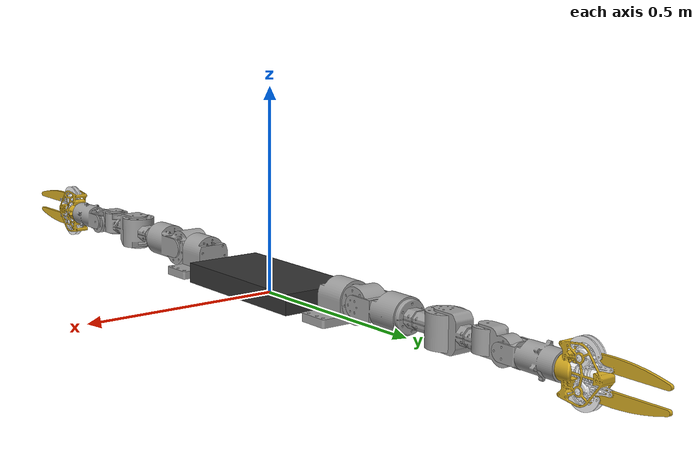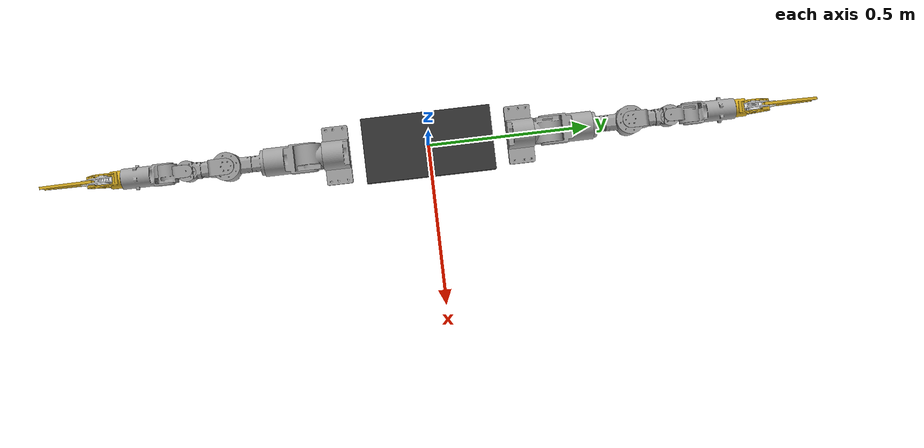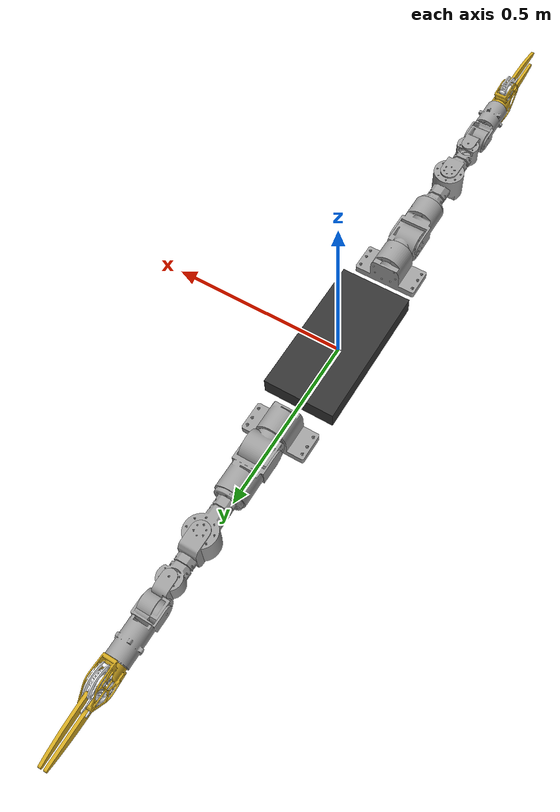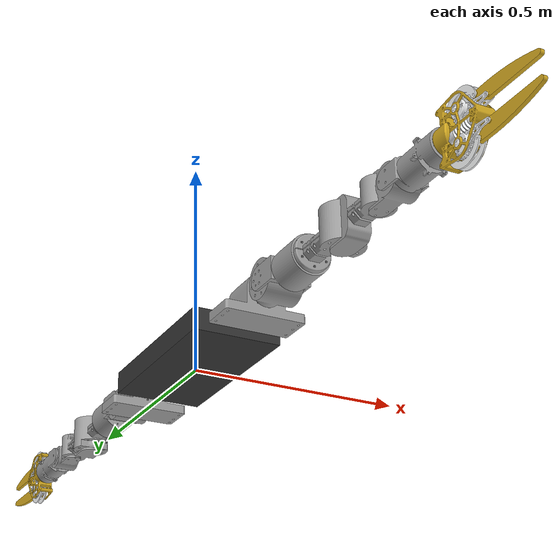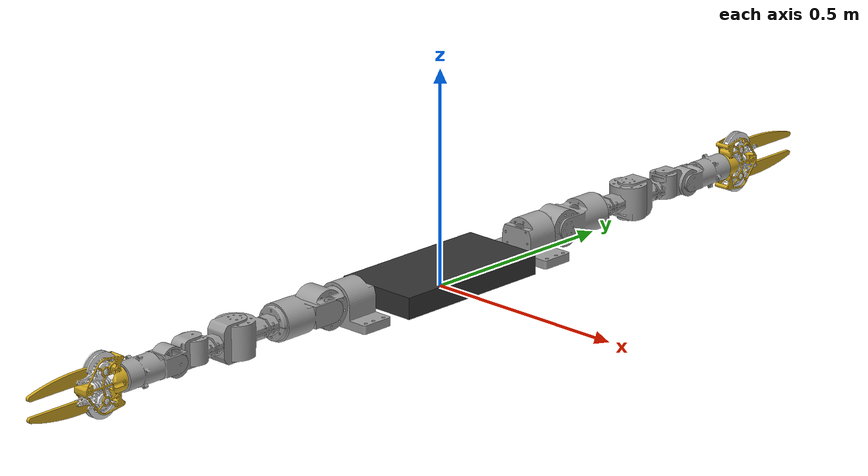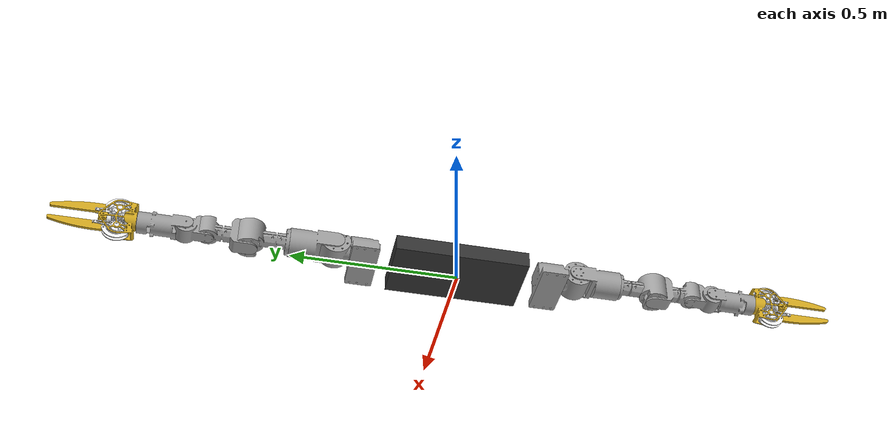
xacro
<?xml version="1.0" ?>
<robot xmlns:xacro="http://www.ros.org/wiki/xacro" name="dual_walkie_arm">

    <xacro:arg name="robot_name" default="dual_walkie_arm" />
    <xacro:arg name="base_link" default="base_link" />
    <xacro:arg name="use_gripper" default="true" />
    <xacro:arg name="arm_spacing" default="0.5" />

    <xacro:include filename="$(find arm_description)/urdf/walkie-arm/walkie_arm.urdf.xacro" />
    <xacro:include filename="$(find arm_description)/urdf/walkie-gripper/walkie_gripper.urdf.xacro" />

    <link name="$(arg base_link)">
      <inertial>
        <origin xyz="0 0 0.025" rpy="0 0 0" />
        <mass value="2.0" />
        <inertia ixx="0.01" ixy="0.0" ixz="0.0" iyy="0.01" iyz="0.0" izz="0.015" />
      </inertial>
      <visual>
        <geometry>
          <box size="0.2 0.4 0.05" />
        </geometry>
        <origin xyz="0 0 0.025" rpy="0 0 0" />
        <material name="base_material">
          <color rgba="0.2 0.2 0.2 1.0" />
        </material>
      </visual>
      <collision>
        <geometry>
          <box size="0.2 0.4 0.05" />
        </geometry>
        <origin xyz="0 0 0.025" rpy="0 0 0" />
      </collision>
    </link>

    <joint name="left_arm_mount_joint" type="fixed">
      <parent link="$(arg base_link)" />
      <child link="left_arm_base" />
      <origin xyz="0 ${$(arg arm_spacing)/2} 0.05" rpy="0 0 1.570796326794897" />
    </joint>

    <xacro:walkie_arm base_link="left_arm_base" prefix="left" />

    <xacro:if value="$(arg use_gripper)">
      <xacro:walkie_gripper parent="left_link6" prefix="left" />
    </xacro:if>

    <joint name="right_arm_mount_joint" type="fixed">
      <parent link="$(arg base_link)" />
      <child link="right_arm_base" />
      <origin xyz="0 ${-$(arg arm_spacing)/2} 0.05" rpy="0 0 -1.570796326794897" />
    </joint>

    <xacro:walkie_arm base_link="right_arm_base" prefix="right" />

    <xacro:if value="$(arg use_gripper)">
      <xacro:walkie_gripper parent="right_link6" prefix="right" />
    </xacro:if>

    <gazebo reference="$(arg base_link)">
      <material>Gazebo/DarkGrey</material>
    </gazebo>

    <gazebo reference="left_arm_base">
      <material>Gazebo/Grey</material>
    </gazebo>

    <gazebo reference="right_arm_base">
      <material>Gazebo/Grey</material>
    </gazebo>

</robot>

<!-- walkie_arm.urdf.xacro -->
<robot xmlns:xacro="http://www.ros.org/wiki/xacro">

  <xacro:property name="joint_effort" value="30.0" />
  <xacro:property name="joint_velocity" value="2.0" />
  <xacro:property name="joint_damping" value="0.1" />
  <xacro:property name="joint_friction" value="0.1" />

  <material name="walkie_steel_satin">
    <color rgba="0.62353 0.62353 0.62353 1.0" />
  </material>

  <xacro:macro name="walkie_arm" params="base_link prefix">

    <link name="${base_link}">
      <visual>
        <material name="walkie_steel_satin" />
        <origin rpy="0.0 0.0 0.0" xyz="0.07550 0.0 0.0" />
        <geometry>
          <mesh filename="package://arm_description/meshes/walkie-arm/stl/Body1.267.stl" scale="1 1 1"/>
        </geometry>
      </visual>
      <collision>
        <origin rpy="0.0 0.0 0.0" xyz="0.07550 0.0 0.0" />
        <geometry>
          <mesh filename="package://arm_description/meshes/walkie-arm/stl/Body1.267.stl" scale="1 1 1"/>
        </geometry>
      </collision>
      <inertial>
        <origin xyz="0 0 0" rpy="0 0 0"/>
        <mass value="0.5"/>
        <inertia ixx="0.001" ixy="0" ixz="0" iyy="0.001" iyz="0" izz="0.001"/>
      </inertial>
    </link>

    <joint name="${prefix}_joint1" type="revolute">
      <axis xyz="1.0 0.0 0.0" />
      <limit effort="${joint_effort}" lower="-3.14" upper="3.14" velocity="${joint_velocity}" />
      <parent link="${base_link}" />
      <child link="${prefix}_link1" />
      <origin xyz="0.07550 0.0 0.0" rpy="0.0 0.0 0.0" />
      <dynamics damping="${joint_damping}" friction="${joint_friction}" />
    </joint>

    <link name="${prefix}_link1">
      <visual>
        <material name="walkie_steel_satin" />
        <origin rpy="0.0 0.0 0.0" xyz="0.04425 -0.03925 0.0" />
        <geometry>
          <mesh filename="package://arm_description/meshes/walkie-arm/stl/Body8.006.stl" scale="1 1 1"/>
        </geometry>
      </visual>
      <collision>
        <origin rpy="0.0 0.0 0.0" xyz="0.04425 -0.03925 0.0" />
        <geometry>
          <mesh filename="package://arm_description/meshes/walkie-arm/stl/Body8.006.stl" scale="1 1 1"/>
        </geometry>
      </collision>
      <inertial>
        <mass value="0.15" />
        <inertia ixx="0.00015" ixy="0.0" ixz="0.0" iyy="0.00015" iyz="0.0" izz="0.0001" />
      </inertial>
    </link>

    <joint name="${prefix}_joint2" type="revolute">
      <axis xyz="0.0 -1.0 0.0" />
      <limit effort="${joint_effort}" lower="-1.57" upper="1.57" velocity="${joint_velocity}" />
      <parent link="${prefix}_link1" />
      <child link="${prefix}_link2" />
      <origin xyz="0.04425 -0.03925 0.0" rpy="0.0 -1.57 0.0" />
      <dynamics damping="${joint_damping}" friction="${joint_friction}" />
    </joint>

    <link name="${prefix}_link2">
      <visual>
        <material name="walkie_steel_satin" />
        <origin rpy="0.0 0.0 0.0" xyz="0.0 0.03925 -0.13525" />
        <geometry>
          <mesh filename="package://arm_description/meshes/walkie-arm/stl/Body2.006.stl" scale="1 1 1"/>
        </geometry>
      </visual>
      <collision>
       <origin rpy="0.0 0.0 0.0" xyz="0.0 0.03925 -0.13525" />
        <geometry>
          <mesh filename="package://arm_description/meshes/walkie-arm/stl/Body2.006.stl" scale="1 1 1"/>
        </geometry>
      </collision>
      <inertial>
        <mass value="0.12" />
        <inertia ixx="0.00012" ixy="0.0" ixz="0.0" iyy="0.00012" iyz="0.0" izz="0.00008" />
      </inertial>
    </link>

    <joint name="${prefix}_joint3" type="revolute">
      <axis xyz="0.0 0.0 -1.0" />
      <limit effort="${joint_effort}" lower="-3.14" upper="3.14" velocity="${joint_velocity}" />
      <parent link="${prefix}_link2" />
      <child link="${prefix}_link3" />
      <origin xyz="0.0 0.03925 -0.13525" rpy="0.0 0.0 0.0" />
      <dynamics damping="${joint_damping}" friction="${joint_friction}" />
    </joint>

    <link name="${prefix}_link3">
      <visual>
        <material name="walkie_steel_satin" />
        <origin rpy="0.0 0.0 0.0" xyz="0.03825 0.0 -0.11475" />
        <geometry>
          <mesh filename="package://arm_description/meshes/walkie-arm/stl/Body1.266.stl" scale="1 1 1"/>
        </geometry>
      </visual>
      <collision>
        <origin rpy="0.0 0.0 0.0" xyz="0.03825 0.0 -0.11475" />
        <geometry>
          <mesh filename="package://arm_description/meshes/walkie-arm/stl/Body1.266.stl" scale="1 1 1"/>
        </geometry>
      </collision>
      <inertial>
        <mass value="0.20" />
        <inertia ixx="0.0002" ixy="0.0" ixz="0.0" iyy="0.0002" iyz="0.0" izz="0.00012" />
      </inertial>
    </link>

    <joint name="${prefix}_joint4" type="revolute">
      <axis xyz="1.0 0.0 0.0" />
      <limit effort="${joint_effort}" lower="-1.9" upper="1.9" velocity="${joint_velocity}" />
      <parent link="${prefix}_link3" />
      <child link="${prefix}_link4" />
      <origin xyz="0.03825 0.0 -0.11475" rpy="0.0 0.0 0.0" />
      <dynamics damping="${joint_damping}" friction="${joint_friction}" />
    </joint>

    <link name="${prefix}_link4">
      <visual>
        <material name="walkie_steel_satin" />
        <origin rpy="0.0 0.0 0.0" xyz="-0.05962 0.0 -0.12200" />
        <geometry>
          <mesh filename="package://arm_description/meshes/walkie-arm/stl/Body2.020.stl" scale="1 1 1"/>
        </geometry>
      </visual>
      <collision>
        <origin rpy="0.0 0.0 0.0" xyz="-0.05962 0.0 -0.12200" />
        <geometry>
          <mesh filename="package://arm_description/meshes/walkie-arm/stl/Body2.020.stl" scale="1 1 1"/>
        </geometry>
      </collision>
      <inertial>
        <mass value="0.18" />
        <inertia ixx="0.00025" ixy="0.0" ixz="0.0" iyy="0.00025" iyz="0.0" izz="0.00015" />
      </inertial>
    </link>

    <joint name="${prefix}_joint5" type="revolute">
      <axis xyz="-1.0 0.0 0.0" />
      <limit effort="${joint_effort}" lower="-1.57" upper="1.57" velocity="${joint_velocity}" />
      <parent link="${prefix}_link4" />
      <child link="${prefix}_link5" />
      <origin xyz="-0.05962 0.0 -0.12200" rpy="0.0 0.0 0.0" />
      <dynamics damping="${joint_damping}" friction="${joint_friction}" />
    </joint>

    <link name="${prefix}_link5">
      <visual>
        <material name="walkie_steel_satin" />
        <origin rpy="0.0 0.0 0.0" xyz="0.02037 -0.02800 -0.06500" />
        <geometry>
          <mesh filename="package://arm_description/meshes/walkie-arm/stl/Body2.026.stl" scale="1 1 1"/>
        </geometry>
      </visual>
      <collision>
        <origin rpy="0.0 0.0 0.0" xyz="0.02037 -0.02800 -0.06500" />
        <geometry>
          <mesh filename="package://arm_description/meshes/walkie-arm/stl/Body2.026.stl" scale="1 1 1"/>
        </geometry>
      </collision>
      <inertial>
        <mass value="0.15" />
        <inertia ixx="0.0002" ixy="0.0" ixz="0.0" iyy="0.0002" iyz="0.0" izz="0.00012" />
      </inertial>
    </link>

    <joint name="${prefix}_joint6" type="revolute">
      <axis xyz="0.0 -1.0 0.0" />
      <limit effort="${joint_effort}" lower="-1.57" upper="1.57" velocity="${joint_velocity}" />
      <parent link="${prefix}_link5" />
      <child link="${prefix}_link6" />
      <origin xyz="0.02037 -0.02800 -0.06500" rpy="0.0 0.0 0.0" />
      <dynamics damping="${joint_damping}" friction="${joint_friction}" />
    </joint>

    <link name="${prefix}_link6">
      <visual>
        <material name="walkie_steel_satin" />
        <origin rpy="0.0 0.0 0.0" xyz="0.0 0.02800 -0.13825" />
        <geometry>
          <mesh filename="package://arm_description/meshes/walkie-arm/stl/Body1.259.stl" scale="1 1 1"/>
        </geometry>
      </visual>
      <collision>
        <origin rpy="0.0 0.0 0.0" xyz="0.0 0.02800 -0.13825" />
        <geometry>
          <mesh filename="package://arm_description/meshes/walkie-arm/stl/Body1.259.stl" scale="1 1 1"/>
        </geometry>
      </collision>
      <inertial>
        <mass value="0.10" />
        <inertia ixx="0.00015" ixy="0.0" ixz="0.0" iyy="0.00015" iyz="0.0" izz="0.0001" />
      </inertial>
    </link>

  </xacro:macro>
</robot>

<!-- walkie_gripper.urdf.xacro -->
<robot xmlns:xacro="http://www.ros.org/wiki/xacro">
  <xacro:property name="joint_effort" value="10.0" />
  <xacro:property name="joint_velocity" value="1.0" />
  <xacro:property name="joint_damping" value="0.1" />
  <xacro:property name="joint_friction" value="0.1" />

  <xacro:property name="worm_joint_effort" value="20.0" />
  <xacro:property name="worm_joint_velocity" value="2.0" />

  <xacro:macro name="gripper_link_inertial" params="mass">
    <inertial>
      <origin xyz="0 0 0" rpy="0 0 0" />
      <mass value="${mass}" />
      <inertia ixx="1e-6" ixy="0.0" ixz="0.0" iyy="1e-6" iyz="0.0" izz="1e-6" />
    </inertial>
  </xacro:macro>

  <material name="walkie_aluminum_polished">
    <color rgba="0.95686 0.96078 0.96471 1.0" />
  </material>
  <material name="walkie_opaque_gold">
    <color rgba="0.83137 0.66667 0.12941 1.0" />
  </material>

  <xacro:macro name="walkie_gripper" params="parent prefix">

    <joint name="${prefix}_joint7" type="revolute">
      <axis xyz="0.0 0.0 -1.0" />
      <limit effort="30.0" lower="-3.14" upper="3.14" velocity="2.0" />
      <parent link="${parent}" /> <child link="${prefix}_link7" />
      <origin xyz="0.0 0.02800 -0.13825" rpy="0.0 0.0 0.0" />
      <dynamics damping="${joint_damping}" friction="${joint_friction}" />
    </joint>

    <link name="${prefix}_link7">
      <visual>
        <material name="walkie_opaque_gold" />
        <origin rpy="0.0 0.0 0.0" xyz="0.0 0.02116 -0.03906" />
        <geometry>
          <mesh filename="package://arm_description/meshes/walkie-gripper/stl/Body1.121.stl" scale="1 1 1"/>
        </geometry>
      </visual>
      <collision>
        <origin rpy="0.0 0.0 0.0" xyz="0.0 0.0 -0.03004"/>
        <geometry>
          <box size="0.12520 0.05916 0.05330"/>
        </geometry>
      </collision>
      <xacro:gripper_link_inertial mass="0.2" />
    </link>

    <link name="${prefix}_gripper_worm_gear">
      <xacro:gripper_link_inertial mass="0.02" />
      <visual>
        <material name="walkie_aluminum_polished" />
        <origin rpy="0.0 0.0 0.0" xyz="0.0 0.0 0.0" />
        <geometry>
          <mesh filename="package://arm_description/meshes/walkie-gripper/stl/Body1.133.stl" scale="1 1 1"/>
        </geometry>
      </visual>
    </link>

    <joint name="${prefix}_gripper_worm_gear" type="revolute">
      <limit lower="-15.7" upper="3.14" effort="${worm_joint_effort}" velocity="${worm_joint_velocity}"/>
      <origin rpy="0.0 0.0 0.0" xyz="0.0 0.0 -0.00275"/>
      <parent link="${prefix}_link7"/>
      <child link="${prefix}_gripper_worm_gear"/>
      <axis xyz="0.0 0.0 -1.0"/>
      <dynamics damping="${joint_damping}" friction="${joint_friction}" />
    </joint>

    <link name="${prefix}_gripper_gear_r">
      <xacro:gripper_link_inertial mass="0.01" />
      <visual>
        <material name="walkie_aluminum_polished" />
        <geometry>
          <mesh filename="package://arm_description/meshes/walkie-gripper/stl/Body1.113.stl" scale="1 1 1"/>
        </geometry>
      </visual>
    </link>

    <joint name="${prefix}_gripper_gear_r" type="revolute">
      <limit lower="-3.14" upper="3.14" effort="${joint_effort}" velocity="${joint_velocity}"/>
      <mimic multiplier="0.1" offset="0" joint="${prefix}_gripper_worm_gear"/>
      <origin rpy="0.0 0.0 0.0" xyz="-0.03240 -0.00100 -0.05335"/>
      <parent link="${prefix}_link7"/>
      <child link="${prefix}_gripper_gear_r"/>
      <axis xyz="0.0 -1.0 0.0"/>
      <dynamics damping="${joint_damping}" friction="${joint_friction}" />
    </joint>

    <link name="${prefix}_gripper_gear_l">
      <xacro:gripper_link_inertial mass="0.01" />
      <visual>
        <material name="walkie_aluminum_polished" />
        <geometry>
          <mesh filename="package://arm_description/meshes/walkie-gripper/stl/Body1.007.stl" scale="1 1 1"/>
        </geometry>
      </visual>
    </link>

    <joint name="${prefix}_gripper_gear_l" type="revolute">
      <limit lower="-3.14" upper="3.14" effort="${joint_effort}" velocity="${joint_velocity}"/>
      <mimic multiplier="-0.1" offset="0" joint="${prefix}_gripper_worm_gear"/>
      <origin rpy="0.0 0.0 0.0" xyz="0.03240 -0.00100 -0.05335"/>
      <parent link="${prefix}_link7"/>
      <child link="${prefix}_gripper_gear_l"/>
      <axis xyz="0.0 -1.0 0.0"/>
      <dynamics damping="${joint_damping}" friction="${joint_friction}" />
    </joint>

    <link name="${prefix}_gripper_hand_r">
      <xacro:gripper_link_inertial mass="0.015" />
      <collision>
        <origin rpy="0.0 0.0 0.0" xyz="-0.00904 0.0 -0.04823"/>
        <geometry>
          <box size="0.03010 0.01000 0.16753"/>
        </geometry>
      </collision>
      <visual>
        <material name="walkie_opaque_gold" />
        <geometry>
          <mesh filename="package://arm_description/meshes/walkie-gripper/stl/Body1.123.stl" scale="1 1 1"/>
        </geometry>
      </visual>
    </link>

    <joint name="${prefix}_gripper_hand_r" type="revolute">
      <limit lower="-3.14" upper="3.14" effort="${joint_effort}" velocity="${joint_velocity}"/>
      <mimic multiplier="-1.0" offset="0" joint="${prefix}_gripper_gear_r"/>
      <origin rpy="0.0 0.0 0.0" xyz="0.00896 0.00100 -0.06579"/>
      <parent link="${prefix}_gripper_gear_r"/>
      <child link="${prefix}_gripper_hand_r"/>
      <axis xyz="0.0 -1.0 0.0"/>
      <dynamics damping="${joint_damping}" friction="${joint_friction}" />
    </joint>

    <link name="${prefix}_gripper_hand_l">
      <xacro:gripper_link_inertial mass="0.015" />
      <collision>
        <origin rpy="0.0 0.0 0.0" xyz="0.00904 0.0 -0.04823"/>
        <geometry>
          <box size="0.03010 0.01000 0.16753"/>
        </geometry>
      </collision>
      <visual>
        <material name="walkie_opaque_gold" />
        <geometry>
          <mesh filename="package://arm_description/meshes/walkie-gripper/stl/Body1.046.stl" scale="1 1 1"/>
        </geometry>
      </visual>
    </link>

    <joint name="${prefix}_gripper_hand_l" type="revolute">
      <limit lower="-3.14" upper="3.14" effort="${joint_effort}" velocity="${joint_velocity}"/>
      <mimic multiplier="-1.0" offset="0" joint="${prefix}_gripper_gear_l"/>
      <origin rpy="0.0 0.0 0.0" xyz="-0.00896 0.00100 -0.06579"/>
      <parent link="${prefix}_gripper_gear_l"/>
      <child link="${prefix}_gripper_hand_l"/>
      <axis xyz="0.0 -1.0 0.0"/>
      <dynamics damping="${joint_damping}" friction="${joint_friction}" />
    </joint>

    <link name="${prefix}_gripper_connector_r">
      <xacro:gripper_link_inertial mass="0.01" />
      <visual>
        <material name="walkie_aluminum_polished" />
        <geometry>
          <mesh filename="package://arm_description/meshes/walkie-gripper/stl/Body1.019.stl" scale="1 1 1"/>
        </geometry>
      </visual>
    </link>

    <joint name="${prefix}_gripper_connector_r" type="revolute">
      <limit lower="-3.14" upper="3.14" effort="${joint_effort}" velocity="${joint_velocity}"/>
      <mimic multiplier="-1.0" offset="0" joint="${prefix}_gripper_hand_r"/>
      <origin rpy="0.0 0.0 0.0" xyz="-0.01742 0.0 0.02955"/>
      <parent link="${prefix}_gripper_hand_r"/>
      <child link="${prefix}_gripper_connector_r"/>
      <axis xyz="0.0 -1.0 0.0"/>
      <dynamics damping="${joint_damping}" friction="${joint_friction}" />
    </joint>

    <link name="${prefix}_gripper_connector_l">
      <xacro:gripper_link_inertial mass="0.01" />
      <visual>
        <material name="walkie_aluminum_polished" />
        <geometry>
          <mesh filename="package://arm_description/meshes/walkie-gripper/stl/Body1.003.stl" scale="1 1 1"/>
        </geometry>
      </visual>
    </link>

    <joint name="${prefix}_gripper_connector_l" type="revolute">
      <limit lower="-3.14" upper="3.14" effort="${joint_effort}" velocity="${joint_velocity}"/>
      <mimic multiplier="-1.0" offset="0" joint="${prefix}_gripper_hand_l"/>
      <origin rpy="0.0 0.0 0.0" xyz="0.01742 0.0 0.02955"/>
      <parent link="${prefix}_gripper_hand_l"/>
      <child link="${prefix}_gripper_connector_l"/>
      <axis xyz="0.0 -1.0 0.0"/>
      <dynamics damping="${joint_damping}" friction="${joint_friction}" />
    </joint>

  </xacro:macro>
</robot>
